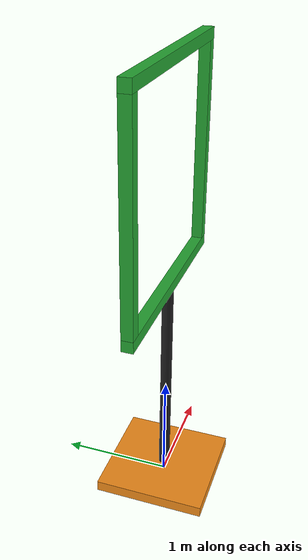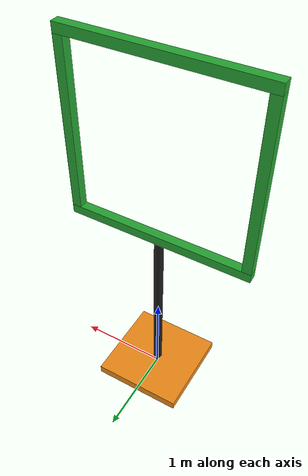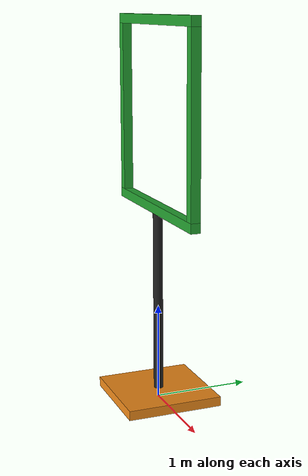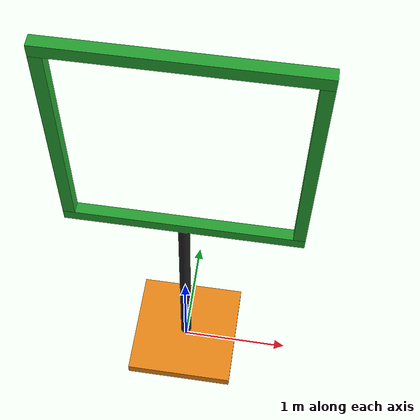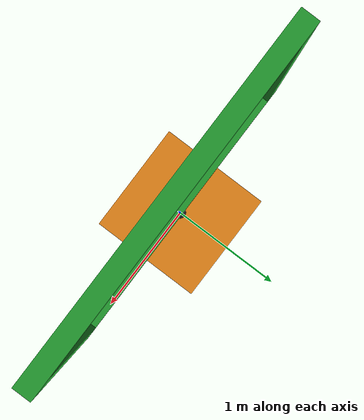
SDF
<?xml version='1.0'?>
<sdf version='1.6'>
  <model name='square_gate'>
    <pose>0 0 0 0 0 0</pose>
    <static>true</static>
    <link name="square_gate_link">
      <inertial>
        <mass>1.0</mass>
        <inertia> <!-- inertias are tricky to compute -->
          <!-- http://gazebosim.org/tutorials?tut=inertia&cat=build_robot -->
          <ixx>0.083</ixx>       <!-- for a box: ixx = 0.083 * mass * (y*y + z*z) -->
          <ixy>0.0</ixy>         <!-- for a box: ixy = 0 -->
          <ixz>0.0</ixz>         <!-- for a box: ixz = 0 -->
          <iyy>0.083</iyy>       <!-- for a box: iyy = 0.083 * mass * (x*x + z*z) -->
          <iyz>0.0</iyz>         <!-- for a box: iyz = 0 -->
          <izz>0.083</izz>       <!-- for a box: izz = 0.083 * mass * (x*x + y*y) -->
        </inertia>
      </inertial>
      <collision name="base">
        <pose>0 0 0.05 0 0 0</pose>
        <geometry>
          <box>
            <size>1 1 0.1</size>
          </box>
        </geometry>
      </collision>
      <collision name="bar">
        <pose>0 0 1.05 0 0 0</pose>
        <geometry>
          <cylinder>
            <radius>0.01</radius>
            <length>1.9</length>
          </cylinder>
        </geometry>
      </collision>
      <collision name="rod0">
        <pose>0 0 2.02 0 0 0</pose>
        <geometry>
          <box>
            <size>2 0.04 0.04</size>
          </box>
        </geometry>
      </collision>
      <collision name="rod1">
        <pose>0 0 3.98 0 0 0</pose>
        <geometry>
          <box>
            <size>2 0.04 0.04</size>
          </box>
        </geometry>
      </collision>
      <collision name="rod2">
        <pose>0.98 0 3 0 0 0</pose>
        <geometry>
          <box>
            <size>0.04 0.04 1.96</size>
          </box>
        </geometry>
      </collision>
      <collision name="rod3">
        <pose>-0.98 0 3 0 0 0</pose>
        <geometry>
          <box>
            <size>0.04 0.04 1.96</size>
          </box>
        </geometry>
      </collision>
      <visual name="base">
        <pose>0 0 0.05 0 0 0</pose>
        <geometry>
          <box>
            <size>1 1 0.1</size>
          </box>
        </geometry>
        <material>
          <script>
            <uri>file://media/materials/scripts/gazebo.material</uri>
            <name>Gazebo/Orange</name>
          </script>
        </material>
      </visual>
      <visual name="bar">
        <pose>0 0 1.05 0 0 0</pose>
        <geometry>
          <cylinder>
            <radius>0.05</radius>
            <length>1.9</length>
          </cylinder>
        </geometry>
        <material>
          <script>
            <uri>file://media/materials/scripts/gazebo.material</uri>
            <name>Gazebo/Black</name>
          </script>
        </material>
      </visual>
      <visual name="rod0">
        <pose>0 0 2.05 0 0 0</pose>
        <geometry>
          <box>
            <size>2 0.1 0.1</size>
          </box>
        </geometry>
        <material>
          <script>
            <uri>file://media/materials/scripts/gazebo.material</uri>
            <name>Gazebo/Green</name>
          </script>
        </material>
      </visual>
      <visual name="rod1">
        <pose>0 0 3.95 0 0 0</pose>
        <geometry>
          <box>
            <size>2 0.1 0.1</size>
          </box>
        </geometry>
        <material>
          <script>
            <uri>file://media/materials/scripts/gazebo.material</uri>
            <name>Gazebo/Green</name>
          </script>
        </material>
      </visual>
      <visual name="rod2">
        <pose>0.95 0 3 0 0 0</pose>
        <geometry>
          <box>
            <size>0.1 0.1 1.8</size>
          </box>
        </geometry>
        <material>
          <script>
            <uri>file://media/materials/scripts/gazebo.material</uri>
            <name>Gazebo/Green</name>
          </script>
        </material>
      </visual>
      <visual name="rod3">
        <pose>-0.95 0 3 0 0 0</pose>
        <geometry>
          <box>
            <size>0.1 0.1 1.8</size>
          </box>
        </geometry>
        <material>
          <script>
            <uri>file://media/materials/scripts/gazebo.material</uri>
            <name>Gazebo/Green</name>
          </script>
        </material>
      </visual>
    </link>
  </model>
</sdf>
